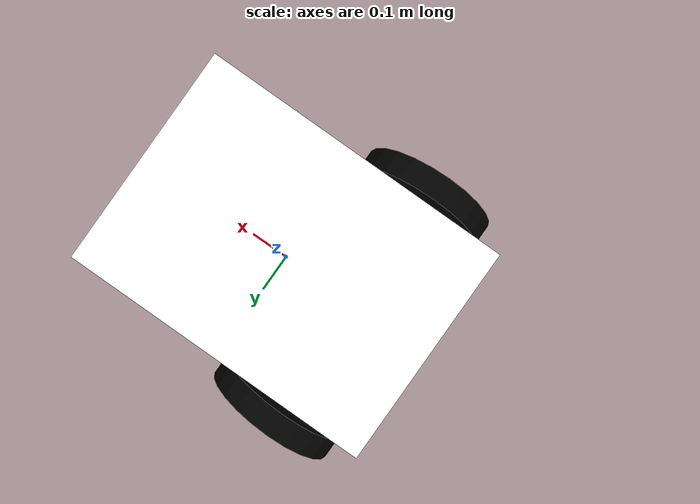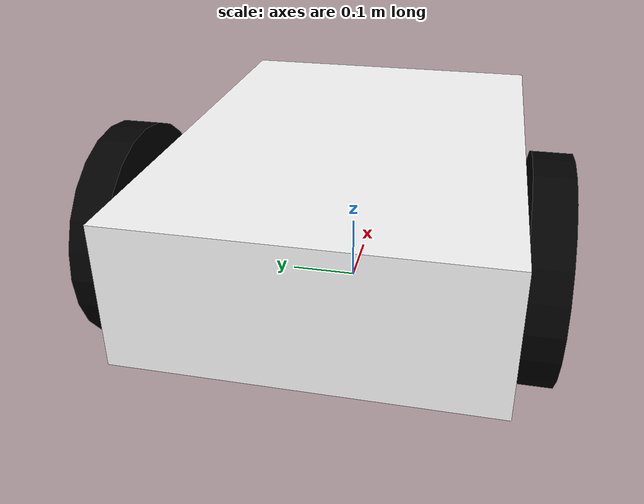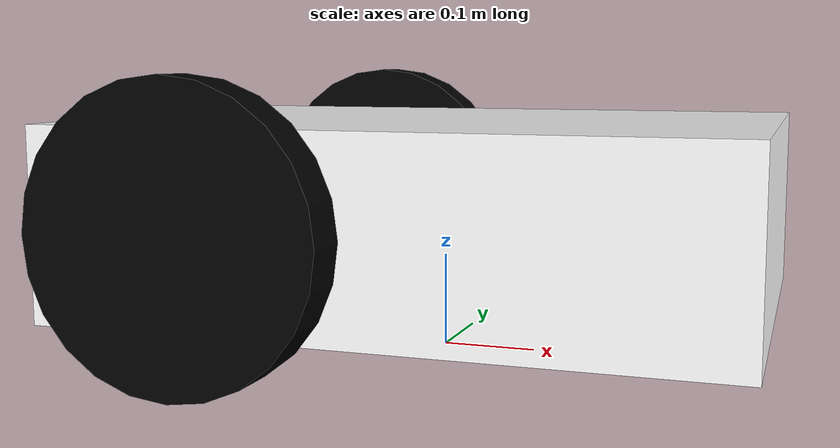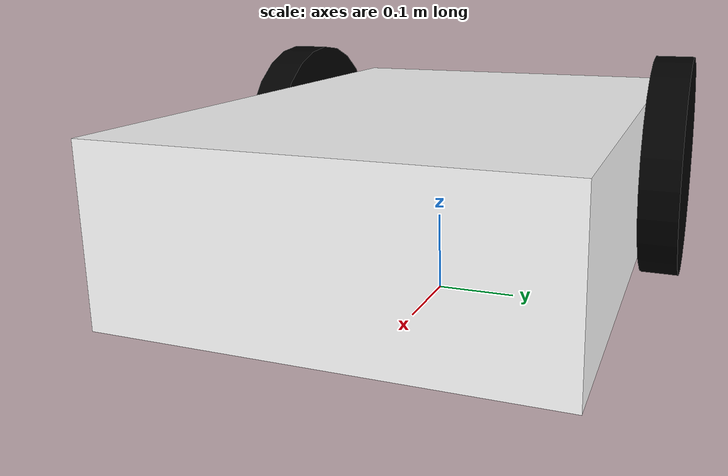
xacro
<?xml version="1.0" ?>
<robot name="bot" xmlns:xacro="http://www.ros.org/wiki/xacro">

<link name="base_footprint"/>

<link name="base_link"> <!-- a lonk contain inetria , visual and collision main tag-->
    <inertial>
        <origin xyz="0 0 0" rpy="0 0 0"/>
        <mass value="5.0"/>
        <inertia ixx="0.1" ixy="0.0" ixz="0.0" iyy="0.1" iyz="0.0" izz="0.1"/>
    </inertial>
    <visual>
        <origin xyz="0.0 0.0 0.0" rpy="0.0 0.0 0.0"/>
        <geometry>
            <box size="0.7 0.5 0.2"/>
        </geometry>
        <material name="white">
            <color rgba="1.0 1.0 1.0 1.0"/>
        </material>
    </visual>
    <collision>
        <origin xyz="0.0 0.0 0.0" rpy="0.0 0.0 0.0"/>
        <geometry>
            <box size="0.7 0.5 0.2"/>
        </geometry>
    </collision>
</link>

<!-- Right Wheel -->
<link name="right_wheel_link">
  <inertial>
    <origin xyz="0 0 0" rpy="0 0 0"/>
    <mass value="1.0"/>
    <inertia ixx="0.01" ixy="0.0" ixz="0.0" iyy="0.01" iyz="0.0" izz="0.01"/>
  </inertial>
  <visual>
    <origin xyz="0.0 0.0 0.0" rpy="0.0 0.0 0.0"/>
    <geometry>
      <cylinder radius="0.15" length="0.05"/>
    </geometry>
    <material name="black">
      <color rgba="0.0 0.0 0.0 1.0"/>
    </material>
  </visual>
  <collision>
    <origin xyz="0.0 0.0 0.0" rpy="0.0 0.0 0.0"/>
    <geometry>
      <cylinder radius="0.15" length="0.05"/>
    </geometry>
  </collision>
</link>

<!-- Left Wheel -->
<link name="left_wheel_link">
  <inertial>
    <origin xyz="0 0 0" rpy="0 0 0"/>
    <mass value="1.0"/>
    <inertia ixx="0.01" ixy="0.0" ixz="0.0" iyy="0.01" iyz="0.0" izz="0.01"/>
  </inertial>
  <visual>
    <origin xyz="0.0 0.0 0.0" rpy="0.0 0.0 0.0"/>
    <geometry>
      <cylinder radius="0.15" length="0.05"/>
    </geometry>
    <material name="black">
      <color rgba="0.0 0.0 0.0 1.0"/>
    </material>
  </visual>
  <collision>
    <origin xyz="0.0 0.0 0.0" rpy="0.0 0.0 0.0"/>
    <geometry>
      <cylinder radius="0.15" length="0.05"/>
    </geometry>
  </collision>
</link>

<!-- Front Castor -->
<link name="front_castor_link">
  <inertial>
    <origin xyz="0 0 0" rpy="0 0 0"/>
    <mass value="0.5"/>
    <inertia ixx="0.005" ixy="0.0" ixz="0.0" iyy="0.005" iyz="0.0" izz="0.005"/>
  </inertial>
  <visual>
    <origin xyz="0.0 0.0 0.0" rpy="0.0 0.0 0.0"/>
    <geometry>
      <sphere radius="0.05"/>
    </geometry>
    <material name="blue">
      <color rgba="0.0 0.0 1.0 1.0"/>
    </material>
  </visual>
  <collision>
    <origin xyz="0.0 0.0 0.0" rpy="0.0 0.0 0.0"/>
    <geometry>
      <sphere radius="0.05"/>
    </geometry>
  </collision>
</link>

<!-- Rear Castor -->

<joint name="base_joint" type="fixed">
    <origin xyz="0.0 0.0 0.15" rpy="0.0 0.0 0.0"/>
    <parent link="base_footprint"/>
    <child link="base_link"/>
</joint>

<joint name="left_wheel_joint" type="continuous">
  <origin xyz="-0.17 0.275 0.0" rpy="1.57 0.0 0.0"/>
  <parent link="base_link"/>
  <child link="left_wheel_link"/>
  <axis xyz="0.0 0.0 -1.0"/>
</joint>

<joint name="right_wheel_joint" type="continuous">
  <origin xyz="-0.17 -0.275 0.0" rpy="1.57 0.0 0.0"/>
  <parent link="base_link"/>
  <child link="right_wheel_link"/>
  <axis xyz="0.0 0.0 -1.0"/>
</joint>

<joint name="front_castor_joint" type="fixed">
  <origin xyz="0.25 0.0 -0.1" rpy="0.0 0.0 0.0"/>
  <parent link="base_link"/>
  <child link="front_castor_link"/>
</joint>

</robot>
